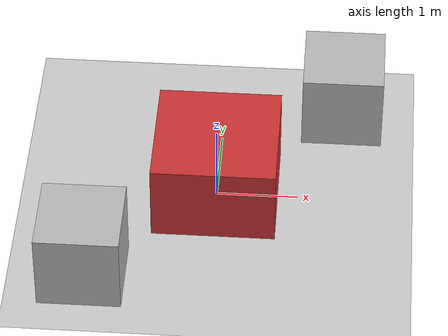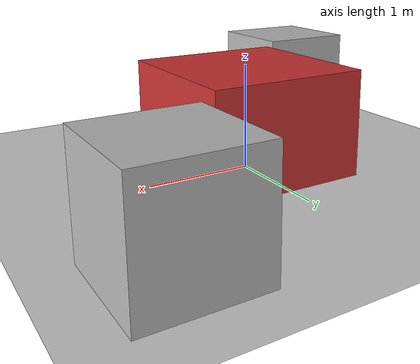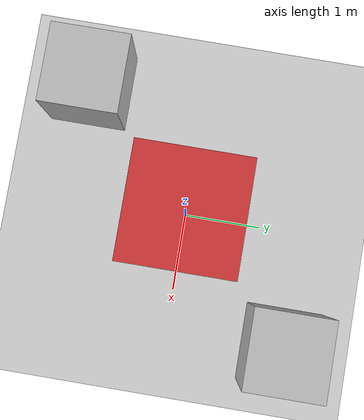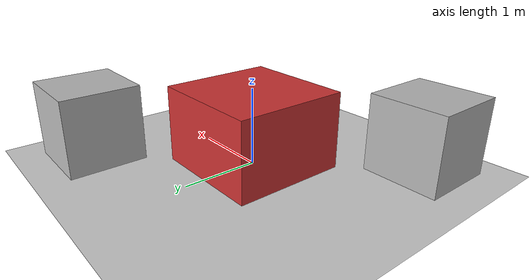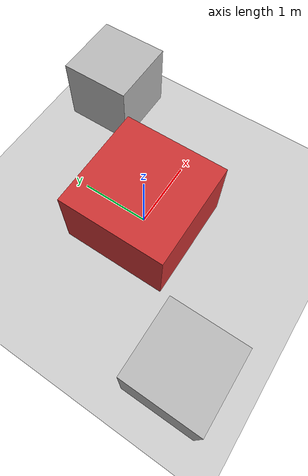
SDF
<?xml version="1.0" ?>
<sdf version="1.6">
  <world name="eval_world">
    <include>
      <uri>model://sun</uri>
    </include>
    <include>
      <uri>model://ground_plane</uri>
    </include>

    <!-- Central Pillar Obstacle -->
    <model name="center_pillar">
      <pose>0 0 0.5 0 0 0</pose>
      <static>true</static>
      <link name="link">
        <collision name="collision">
          <geometry>
            <box>
              <size>1.5 1.5 1.0</size>
            </box>
          </geometry>
        </collision>
        <visual name="visual">
          <geometry>
            <box>
              <size>1.5 1.5 1.0</size>
            </box>
          </geometry>
          <material>
            <ambient>0.8 0.2 0.2 1</ambient>
          </material>
        </visual>
      </link>
    </model>

    <!-- Corner Obstacle 1 -->
    <model name="corner_wall_1">
      <pose>1.5 1.5 0.5 0 0 0</pose>
      <static>true</static>
      <link name="link">
        <collision name="collision">
          <geometry>
            <box>
              <size>1.0 1.0 1.0</size>
            </box>
          </geometry>
        </collision>
        <visual name="visual">
          <geometry>
            <box>
              <size>1.0 1.0 1.0</size>
            </box>
          </geometry>
        </visual>
      </link>
    </model>

    <!-- Corner Obstacle 2 -->
    <model name="corner_wall_2">
      <pose>-1.5 -1.5 0.5 0 0 0</pose>
      <static>true</static>
      <link name="link">
        <collision name="collision">
          <geometry>
            <box>
              <size>1.0 1.0 1.0</size>
            </box>
          </geometry>
        </collision>
        <visual name="visual">
          <geometry>
            <box>
              <size>1.0 1.0 1.0</size>
            </box>
          </geometry>
        </visual>
      </link>
    </model>

    <physics type="ode">
      <real_time_update_rate>1000.0</real_time_update_rate>
      <max_step_size>0.001</max_step_size>
      <real_time_factor>1.0</real_time_factor>
    </physics>
  </world>
</sdf>
